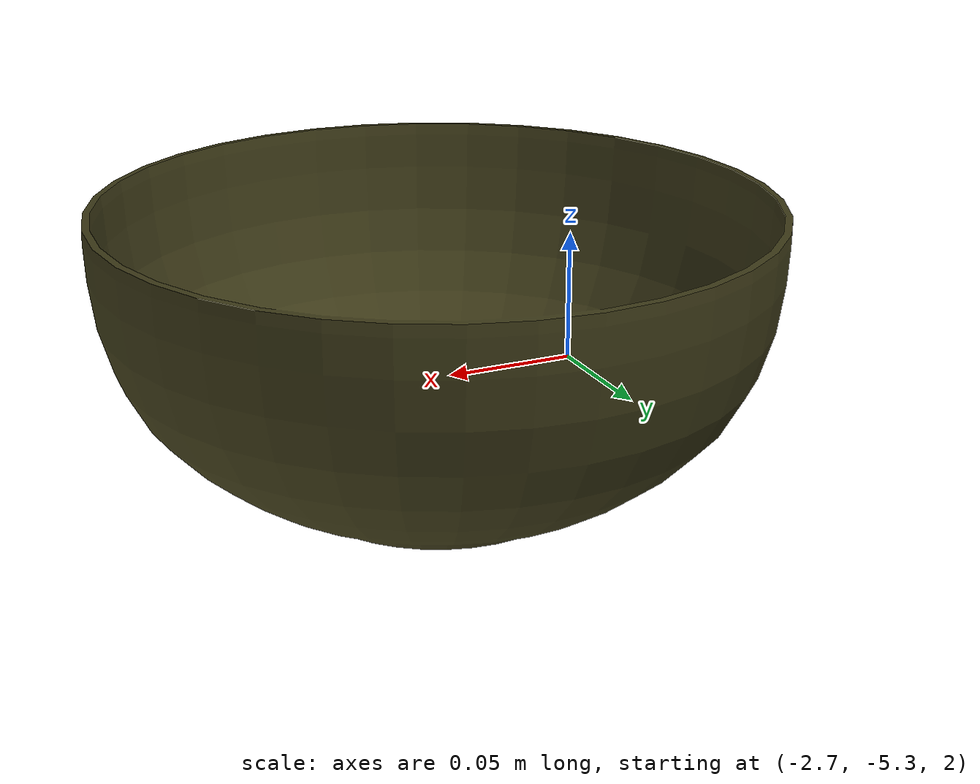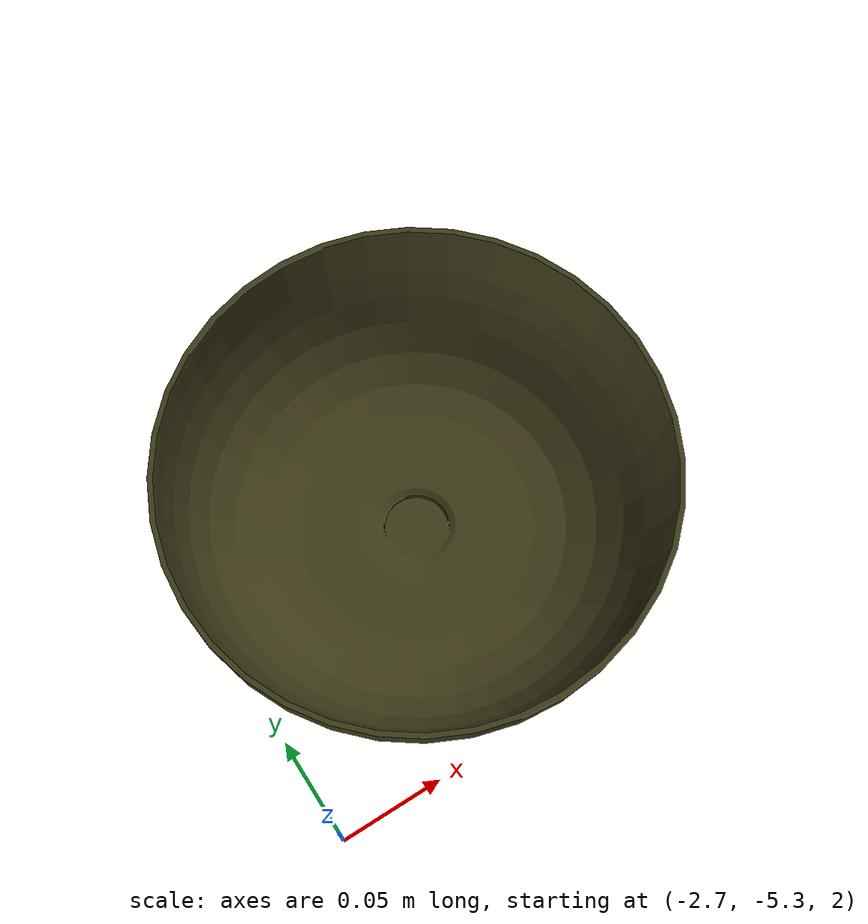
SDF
<sdf version="1.4">
    <model name="bowl">
        <pose>-2.600000 -5.200000 2.000000 0.000000 -0.000000 0.000000</pose>
        <link name="bowl_link">
            <pose>0.000000 0.000000 0.000000 0.000000 -0.000000 0.000000</pose>
            <inertial>
                <pose>-0.004000 0.002000 0.076000 0.000000 -0.000000 0.000000</pose>
                <inertia>
                    <ixx>0.0001</ixx>
                    <ixy>0.000000</ixy>
                    <ixz>0.000000</ixz>
                    <iyy>0.0001</iyy>
                    <iyz>0.000000</iyz>
                    <izz>0.0001</izz>
                </inertia>
                <mass>0.05</mass>
            </inertial>
            <collision name="bowl_collision">
                <pose>0.000000 0.000000 0.000000 0.000000 -0.000000 0.000000</pose>
                <geometry>
                    <mesh>
                        <uri>model://bowl/meshes/bowl.stl</uri>
                        <scale>1 1 1</scale>
                    </mesh>
                </geometry>
                <surface>
                    <friction>
                        <ode>
                            <mu>0.7000000</mu>
                            <mu2>0.7000000</mu2>
                            <fdir1>0.000000 0.000000 0.000000</fdir1>
                            <slip1>0.000000</slip1>
                            <slip2>0.000000</slip2>
                        </ode>
                    </friction>
                    <bounce>
                        <restitution_coefficient>0.000000</restitution_coefficient>
                        <threshold>100000.000000</threshold>
                    </bounce>
                    <contact>
                        <ode>
                            <soft_cfm>0.0</soft_cfm>
                            <soft_erp>0.2</soft_erp>
                            <kp>1000000000000.0</kp>
                            <kd>1000000000000.0</kd>
                            <max_vel>100.000000</max_vel>
                            <min_depth>0.001000</min_depth>
                        </ode>
                    </contact>
                </surface>
                <laser_retro>0.000000</laser_retro>
            </collision>
            <visual name="bowl_visual">
                <pose>0.000000 0.000000 0.000000 0.000000 -0.000000 0.000000</pose>
                <geometry>
                    <mesh>
                        <uri>model://bowl/meshes/bowl.dae</uri>
                        <scale>1 1 1</scale>
                    </mesh>
                </geometry>
                <cast_shadows>1</cast_shadows>
                <laser_retro>0.000000</laser_retro>
                <transparency>0.000000</transparency>
            </visual>
            <gravity>1</gravity>
            <self_collide>0</self_collide>
            <kinematic>0</kinematic>
        </link>
    </model>
</sdf>
